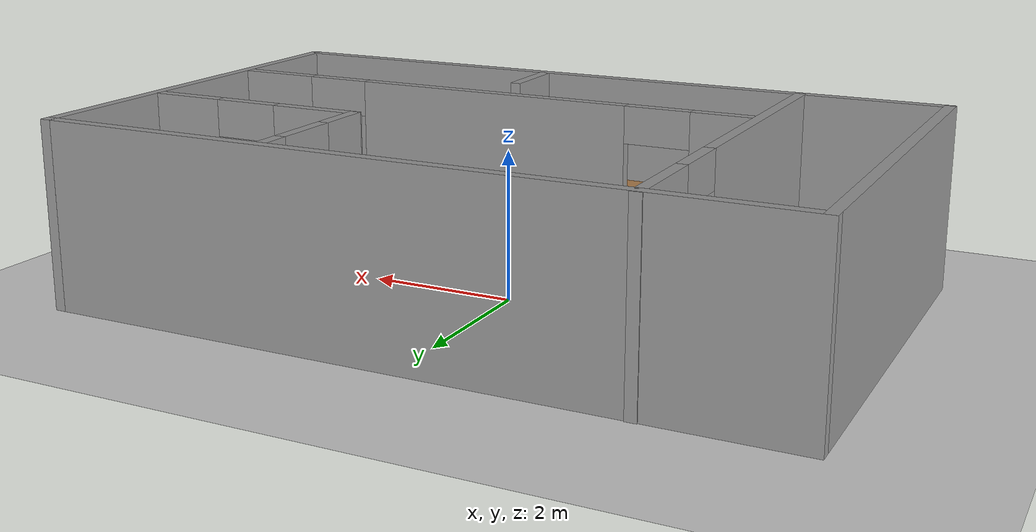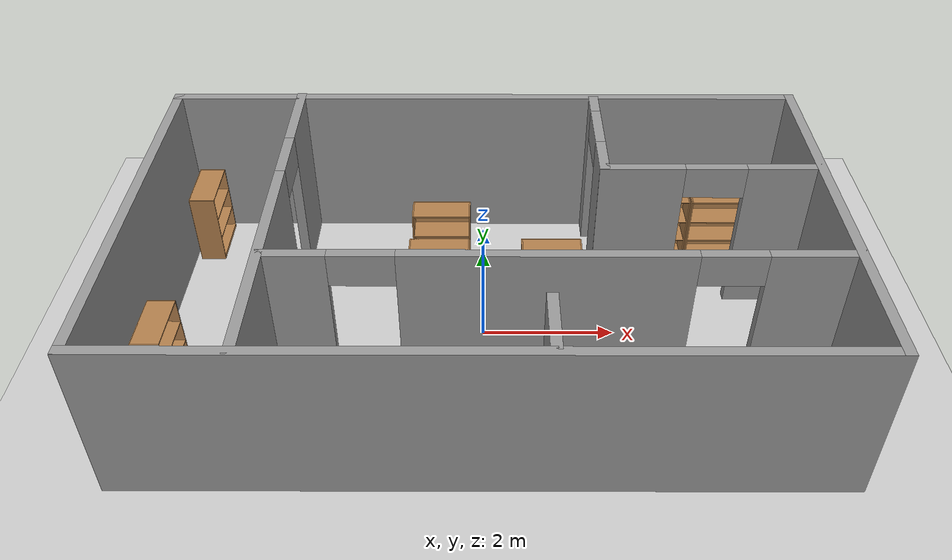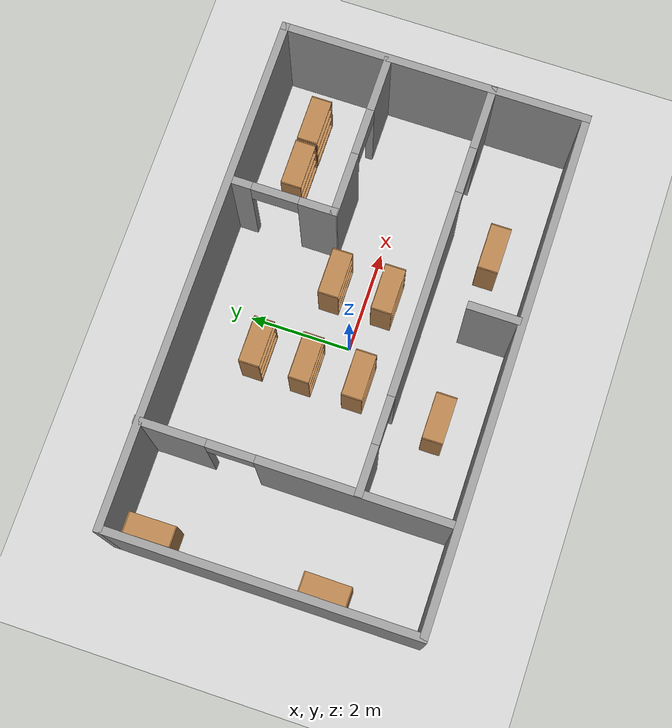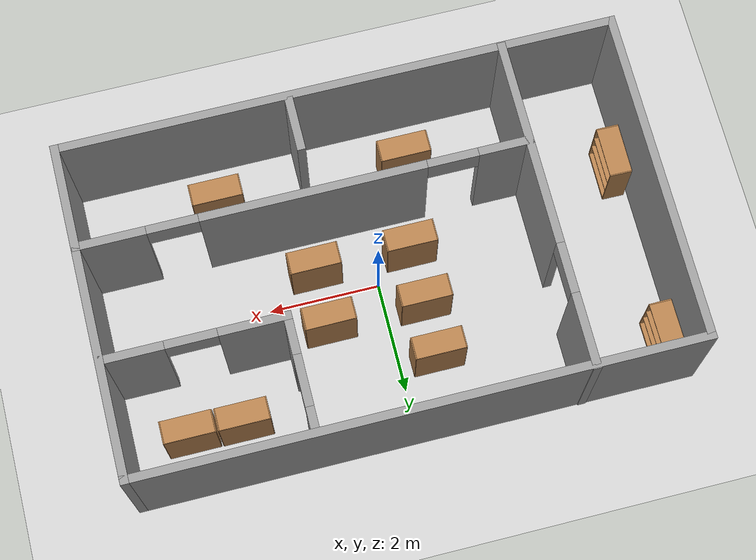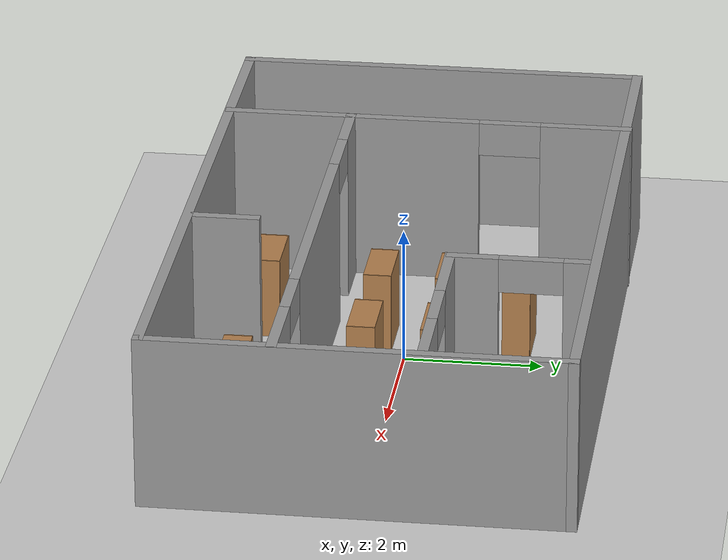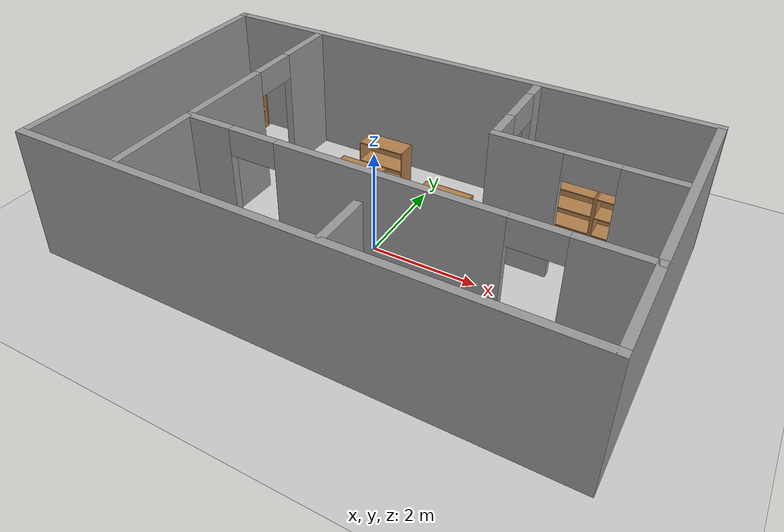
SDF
<sdf version="1.6">
 <world name="default">
  <light name="sun" type="directional">
   <pose>0 0 10 0 -0 0</pose>
   <diffuse>0.8 0.8 0.8 1</diffuse>
   <specular>0.2 0.2 0.2 1</specular>
   <attenuation>
    <range>1000</range>
    <constant>0.9</constant>
    <linear>0.01</linear>
    <quadratic>0.001</quadratic>
   </attenuation>
   <direction>-0.5 0.1 -0.9</direction>
  </light>
  <model name="ground_plane">
   <static>1</static>
   <link name="link">
    <collision name="collision">
     <geometry><plane><normal>0 0 1</normal><size>100 100</size></plane></geometry>
     <surface><friction><ode><mu>100</mu><mu2>50</mu2></ode></friction></surface>
    </collision>
    <visual name="visual">
     <cast_shadows>0</cast_shadows>
     <geometry><plane><normal>0 0 1</normal><size>100 100</size></plane></geometry>
     <material>
      <script><uri>file://media/materials/scripts/gazebo.material</uri><name>Gazebo/Grey</name></script>
     </material>
    </visual>
   </link>
  </model>
  <gravity>0 0 -9.8</gravity>
  <magnetic_field>6e-06 2.3e-05 -4.2e-05</magnetic_field>
  <atmosphere type="adiabatic"/>
  <physics name="default_physics" default="0" type="ode">
   <max_step_size>0.001</max_step_size>
   <real_time_factor>1</real_time_factor>
   <real_time_update_rate>1000</real_time_update_rate>
  </physics>
  <scene><ambient>0.4 0.4 0.4 1</ambient><background>0.7 0.7 0.7 1</background><shadows>1</shadows></scene>
  <audio><device>default</device></audio>
  <spherical_coordinates>
   <surface_model>EARTH_WGS84</surface_model>
   <latitude_deg>0</latitude_deg>
   <longitude_deg>0</longitude_deg>
   <elevation>0</elevation>
   <heading_deg>0</heading_deg>
  </spherical_coordinates>
  <model name="turtlebot_test2">
   <pose>0.00875 -0.020903 0 0 -0 0</pose>
   <link name="Wall_10">
    <pose>0.987783 -1.13106 0 0 -0 0</pose>
    <visual name="Wall_10_Visual_0">
     <pose>-3.51799 0 1.25 0 -0 0</pose>
     <geometry><box><size>0.964011 0.15 2.5</size></box></geometry>
     <material>
      <script><uri>file://media/materials/scripts/gazebo.material</uri><name>Gazebo/Grey</name></script>
      <ambient>1 1 1 1</ambient>
     </material>
     <meta><layer>0</layer></meta>
    </visual>
    <collision name="Wall_10_Collision_0">
     <geometry><box><size>0.964011 0.15 2.5</size></box></geometry>
     <pose>-3.51799 0 1.25 0 -0 0</pose>
    </collision>
    <visual name="Wall_10_Visual_1">
     <pose>-0.152247 0 1.25 0 -0 0</pose>
     <geometry><box><size>3.96748 0.15 2.5</size></box></geometry>
     <material>
      <script><uri>file://media/materials/scripts/gazebo.material</uri><name>Gazebo/Grey</name></script>
      <ambient>1 1 1 1</ambient>
     </material>
     <meta><layer>0</layer></meta>
    </visual>
    <collision name="Wall_10_Collision_1">
     <geometry><box><size>3.96748 0.15 2.5</size></box></geometry>
     <pose>-0.152247 0 1.25 0 -0 0</pose>
    </collision>
    <visual name="Wall_10_Visual_2">
     <pose>3.36575 0 1.25 0 -0 0</pose>
     <geometry><box><size>1.2685 0.15 2.5</size></box></geometry>
     <material>
      <script><uri>file://media/materials/scripts/gazebo.material</uri><name>Gazebo/Grey</name></script>
      <ambient>1 1 1 1</ambient>
     </material>
     <meta><layer>0</layer></meta>
    </visual>
    <collision name="Wall_10_Collision_2">
     <geometry><box><size>1.2685 0.15 2.5</size></box></geometry>
     <pose>3.36575 0 1.25 0 -0 0</pose>
    </collision>
    <visual name="Wall_10_Visual_3">
     <pose>-2.58599 0 2.25 0 -0 0</pose>
     <geometry><box><size>0.9 0.15 0.5</size></box></geometry>
     <material>
      <script><uri>file://media/materials/scripts/gazebo.material</uri><name>Gazebo/Grey</name></script>
      <ambient>1 1 1 1</ambient>
     </material>
     <meta><layer>0</layer></meta>
    </visual>
    <collision name="Wall_10_Collision_3">
     <geometry><box><size>0.9 0.15 0.5</size></box></geometry>
     <pose>-2.58599 0 2.25 0 -0 0</pose>
    </collision>
    <visual name="Wall_10_Visual_4">
     <pose>2.2815 0 2.25 0 -0 0</pose>
     <geometry><box><size>0.9 0.15 0.5</size></box></geometry>
     <material>
      <script><uri>file://media/materials/scripts/gazebo.material</uri><name>Gazebo/Grey</name></script>
      <ambient>1 1 1 1</ambient>
     </material>
     <meta><layer>0</layer></meta>
    </visual>
    <collision name="Wall_10_Collision_4">
     <geometry><box><size>0.9 0.15 0.5</size></box></geometry>
     <pose>2.2815 0 2.25 0 -0 0</pose>
    </collision>
   </link>
   <link name="Wall_12">
    <collision name="Wall_12_Collision">
     <geometry><box><size>1 0.15 2.5</size></box></geometry>
     <pose>0 0 1.25 0 -0 0</pose>
    </collision>
    <visual name="Wall_12_Visual">
     <pose>0 0 1.25 0 -0 0</pose>
     <geometry><box><size>1 0.15 2.5</size></box></geometry>
     <material>
      <script><uri>file://media/materials/scripts/gazebo.material</uri><name>Gazebo/Grey</name></script>
      <ambient>1 1 1 1</ambient>
     </material>
     <meta><layer>0</layer></meta>
    </visual>
    <pose>0.85565 -2.40051 0 0 -0 -1.5708</pose>
   </link>
   <link name="Wall_14">
    <pose>1.76076 1.87936 0 0 -0 -1.5708</pose>
    <visual name="Wall_14_Visual_0">
     <pose>-0.81713 0 1.25 0 -0 0</pose>
     <geometry><box><size>0.454831 0.15 2.5</size></box></geometry>
     <material>
      <script><uri>file://media/materials/scripts/gazebo.material</uri><name>Gazebo/Grey</name></script>
      <ambient>1 1 1 1</ambient>
     </material>
     <meta><layer>0</layer></meta>
    </visual>
    <collision name="Wall_14_Collision_0">
     <geometry><box><size>0.454831 0.15 2.5</size></box></geometry>
     <pose>-0.81713 0 1.25 0 -0 0</pose>
    </collision>
    <visual name="Wall_14_Visual_1">
     <pose>0.677415 0 1.25 0 -0 0</pose>
     <geometry><box><size>0.73426 0.15 2.5</size></box></geometry>
     <material>
      <script><uri>file://media/materials/scripts/gazebo.material</uri><name>Gazebo/Grey</name></script>
      <ambient>1 1 1 1</ambient>
     </material>
     <meta><layer>0</layer></meta>
    </visual>
    <collision name="Wall_14_Collision_1">
     <geometry><box><size>0.73426 0.15 2.5</size></box></geometry>
     <pose>0.677415 0 1.25 0 -0 0</pose>
    </collision>
    <visual name="Wall_14_Visual_2">
     <pose>-0.139715 0 2.25 0 -0 0</pose>
     <geometry><box><size>0.9 0.15 0.5</size></box></geometry>
     <material>
      <script><uri>file://media/materials/scripts/gazebo.material</uri><name>Gazebo/Grey</name></script>
      <ambient>1 1 1 1</ambient>
     </material>
     <meta><layer>0</layer></meta>
    </visual>
    <collision name="Wall_14_Collision_2">
     <geometry><box><size>0.9 0.15 0.5</size></box></geometry>
     <pose>-0.139715 0 2.25 0 -0 0</pose>
    </collision>
   </link>
   <link name="Wall_15">
    <pose>3.31076 0.889706 0 0 -0 0</pose>
    <visual name="Wall_15_Visual_0">
     <pose>-0.9979 0 1.25 0 -0 0</pose>
     <geometry><box><size>1.2542 0.15 2.5</size></box></geometry>
     <material>
      <script><uri>file://media/materials/scripts/gazebo.material</uri><name>Gazebo/Grey</name></script>
      <ambient>1 1 1 1</ambient>
     </material>
     <meta><layer>0</layer></meta>
    </visual>
    <collision name="Wall_15_Collision_0">
     <geometry><box><size>1.2542 0.15 2.5</size></box></geometry>
     <pose>-0.9979 0 1.25 0 -0 0</pose>
    </collision>
    <visual name="Wall_15_Visual_1">
     <pose>1.0771 0 1.25 0 -0 0</pose>
     <geometry><box><size>1.0958 0.15 2.5</size></box></geometry>
     <material>
      <script><uri>file://media/materials/scripts/gazebo.material</uri><name>Gazebo/Grey</name></script>
      <ambient>1 1 1 1</ambient>
     </material>
     <meta><layer>0</layer></meta>
    </visual>
    <collision name="Wall_15_Collision_1">
     <geometry><box><size>1.0958 0.15 2.5</size></box></geometry>
     <pose>1.0771 0 1.25 0 -0 0</pose>
    </collision>
    <visual name="Wall_15_Visual_2">
     <pose>0.079199 0 2.25 0 -0 0</pose>
     <geometry><box><size>0.9 0.15 0.5</size></box></geometry>
     <material>
      <script><uri>file://media/materials/scripts/gazebo.material</uri><name>Gazebo/Grey</name></script>
      <ambient>1 1 1 1</ambient>
     </material>
     <meta><layer>0</layer></meta>
    </visual>
    <collision name="Wall_15_Collision_2">
     <geometry><box><size>0.9 0.15 0.5</size></box></geometry>
     <pose>0.079199 0 2.25 0 -0 0</pose>
    </collision>
   </link>
   <link name="Wall_2">
    <collision name="Wall_2_Collision">
     <geometry><box><size>6 0.15 2.5</size></box></geometry>
     <pose>0 0 1.25 0 -0 0</pose>
    </collision>
    <visual name="Wall_2_Visual">
     <pose>0 0 1.25 0 -0 0</pose>
     <geometry><box><size>6 0.15 2.5</size></box></geometry>
     <material>
      <script><uri>file://media/materials/scripts/gazebo.material</uri><name>Gazebo/Grey</name></script>
      <ambient>1 1 1 1</ambient>
     </material>
     <meta><layer>0</layer></meta>
    </visual>
    <pose>-4.925 -0.007604 0 0 -0 -1.5708</pose>
   </link>
   <link name="Wall_3">
    <collision name="Wall_3_Collision">
     <geometry><box><size>10 0.15 2.5</size></box></geometry>
     <pose>0 0 1.25 0 -0 0</pose>
    </collision>
    <visual name="Wall_3_Visual">
     <pose>0 0 1.25 0 -0 0</pose>
     <geometry><box><size>10 0.15 2.5</size></box></geometry>
     <material>
      <script><uri>file://media/materials/scripts/gazebo.material</uri><name>Gazebo/Grey</name></script>
      <ambient>1 1 1 1</ambient>
     </material>
     <meta><layer>0</layer></meta>
    </visual>
    <pose>-0 -2.93261 0 0 -0 0</pose>
   </link>
   <link name="Wall_4">
    <collision name="Wall_4_Collision">
     <geometry><box><size>6 0.15 2.5</size></box></geometry>
     <pose>0 0 1.25 0 -0 0</pose>
    </collision>
    <visual name="Wall_4_Visual">
     <pose>0 0 1.25 0 -0 0</pose>
     <geometry><box><size>6 0.15 2.5</size></box></geometry>
     <material>
      <script><uri>file://media/materials/scripts/gazebo.material</uri><name>Gazebo/Grey</name></script>
      <ambient>1 1 1 1</ambient>
     </material>
     <meta><layer>0</layer></meta>
    </visual>
    <pose>4.925 -0.007604 0 0 -0 1.5708</pose>
   </link>
   <link name="Wall_5">
    <collision name="Wall_5_Collision">
     <geometry><box><size>10 0.15 2.5</size></box></geometry>
     <pose>0 0 1.25 0 -0 0</pose>
    </collision>
    <visual name="Wall_5_Visual">
     <pose>0 0 1.25 0 -0 0</pose>
     <geometry><box><size>10 0.15 2.5</size></box></geometry>
     <material>
      <script><uri>file://media/materials/scripts/gazebo.material</uri><name>Gazebo/Grey</name></script>
      <ambient>1 1 1 1</ambient>
     </material>
     <meta><layer>0</layer></meta>
    </visual>
    <pose>-0 2.91739 0 0 -0 3.14159</pose>
   </link>
   <link name="Wall_7">
    <pose>-2.94786 0.007604 0 0 -0 -1.5708</pose>
    <visual name="Wall_7_Visual_0">
     <pose>-2.33105 0 1.25 0 -0 0</pose>
     <geometry><box><size>1.33789 0.15 2.5</size></box></geometry>
     <material>
      <script><uri>file://media/materials/scripts/gazebo.material</uri><name>Gazebo/Grey</name></script>
      <ambient>1 1 1 1</ambient>
     </material>
     <meta><layer>0</layer></meta>
    </visual>
    <collision name="Wall_7_Collision_0">
     <geometry><box><size>1.33789 0.15 2.5</size></box></geometry>
     <pose>-2.33105 0 1.25 0 -0 0</pose>
    </collision>
    <visual name="Wall_7_Visual_1">
     <pose>1.11895 0 1.25 0 -0 0</pose>
     <geometry><box><size>3.76211 0.15 2.5</size></box></geometry>
     <material>
      <script><uri>file://media/materials/scripts/gazebo.material</uri><name>Gazebo/Grey</name></script>
      <ambient>1 1 1 1</ambient>
     </material>
     <meta><layer>0</layer></meta>
    </visual>
    <collision name="Wall_7_Collision_1">
     <geometry><box><size>3.76211 0.15 2.5</size></box></geometry>
     <pose>1.11895 0 1.25 0 -0 0</pose>
    </collision>
    <visual name="Wall_7_Visual_2">
     <pose>-1.21211 0 2.25 0 -0 0</pose>
     <geometry><box><size>0.9 0.15 0.5</size></box></geometry>
     <material>
      <script><uri>file://media/materials/scripts/gazebo.material</uri><name>Gazebo/Grey</name></script>
      <ambient>1 1 1 1</ambient>
     </material>
     <meta><layer>0</layer></meta>
    </visual>
    <collision name="Wall_7_Collision_2">
     <geometry><box><size>0.9 0.15 0.5</size></box></geometry>
     <pose>-1.21211 0 2.25 0 -0 0</pose>
    </collision>
   </link>
   <static>1</static>
  </model>
  <model name="bookshelf">
   <static>1</static>
   <link name="link">
    <inertial><mass>1</mass></inertial>
    <collision name="back">
     <pose>0 0.005 0.6 0 -0 0</pose>
     <geometry><box><size>0.9 0.01 1.2</size></box></geometry>
    </collision>
    <visual name="visual1">
     <pose>0 0.005 0.6 0 -0 0</pose>
     <geometry><box><size>0.9 0.01 1.2</size></box></geometry>
     <material>
      <script><uri>file://media/materials/scripts/gazebo.material</uri><name>Gazebo/Wood</name></script>
     </material>
    </visual>
    <collision name="left_side">
     <pose>0.45 -0.195 0.6 0 -0 0</pose>
     <geometry><box><size>0.02 0.4 1.2</size></box></geometry>
    </collision>
    <visual name="visual2">
     <pose>0.45 -0.195 0.6 0 -0 0</pose>
     <geometry><box><size>0.02 0.4 1.2</size></box></geometry>
     <material>
      <script><uri>file://media/materials/scripts/gazebo.material</uri><name>Gazebo/Wood</name></script>
     </material>
    </visual>
    <collision name="right_side">
     <pose>-0.45 -0.195 0.6 0 -0 0</pose>
     <geometry><box><size>0.02 0.4 1.2</size></box></geometry>
    </collision>
    <visual name="visual3">
     <pose>-0.45 -0.195 0.6 0 -0 0</pose>
     <geometry><box><size>0.02 0.4 1.2</size></box></geometry>
     <material>
      <script><uri>file://media/materials/scripts/gazebo.material</uri><name>Gazebo/Wood</name></script>
     </material>
    </visual>
    <collision name="bottom">
     <pose>0 -0.195 0.03 0 -0 0</pose>
     <geometry><box><size>0.88 0.4 0.06</size></box></geometry>
    </collision>
    <visual name="visual4">
     <pose>0 -0.195 0.03 0 -0 0</pose>
     <geometry><box><size>0.88 0.4 0.06</size></box></geometry>
     <material>
      <script><uri>file://media/materials/scripts/gazebo.material</uri><name>Gazebo/Wood</name></script>
     </material>
    </visual>
    <collision name="top">
     <pose>0 -0.195 1.19 0 -0 0</pose>
     <geometry><box><size>0.88 0.4 0.02</size></box></geometry>
    </collision>
    <visual name="visual5">
     <pose>0 -0.195 1.19 0 -0 0</pose>
     <geometry><box><size>0.88 0.4 0.02</size></box></geometry>
     <material>
      <script><uri>file://media/materials/scripts/gazebo.material</uri><name>Gazebo/Wood</name></script>
     </material>
    </visual>
    <collision name="low_shelf">
     <pose>0 -0.195 0.43 0 -0 0</pose>
     <geometry><box><size>0.88 0.4 0.02</size></box></geometry>
    </collision>
    <visual name="visual6">
     <pose>0 -0.195 0.43 0 -0 0</pose>
     <geometry><box><size>0.88 0.4 0.02</size></box></geometry>
     <material>
      <script><uri>file://media/materials/scripts/gazebo.material</uri><name>Gazebo/Wood</name></script>
     </material>
    </visual>
    <collision name="high_shelf">
     <pose>0 -0.195 0.8 0 -0 0</pose>
     <geometry><box><size>0.88 0.4 0.02</size></box></geometry>
    </collision>
    <visual name="visual7">
     <pose>0 -0.195 0.8 0 -0 0</pose>
     <geometry><box><size>0.88 0.4 0.02</size></box></geometry>
     <material>
      <script><uri>file://media/materials/scripts/gazebo.material</uri><name>Gazebo/Wood</name></script>
     </material>
    </visual>
   </link>
   <pose>-0.97921 -1.87273 0 0 -0 0</pose>
  </model>
  <model name="bookshelf_0">
   <static>1</static>
   <link name="link">
    <inertial><mass>1</mass></inertial>
    <collision name="back">
     <pose>0 0.005 0.6 0 -0 0</pose>
     <geometry><box><size>0.9 0.01 1.2</size></box></geometry>
    </collision>
    <visual name="visual1">
     <pose>0 0.005 0.6 0 -0 0</pose>
     <geometry><box><size>0.9 0.01 1.2</size></box></geometry>
     <material>
      <script><uri>file://media/materials/scripts/gazebo.material</uri><name>Gazebo/Wood</name></script>
     </material>
    </visual>
    <collision name="left_side">
     <pose>0.45 -0.195 0.6 0 -0 0</pose>
     <geometry><box><size>0.02 0.4 1.2</size></box></geometry>
    </collision>
    <visual name="visual2">
     <pose>0.45 -0.195 0.6 0 -0 0</pose>
     <geometry><box><size>0.02 0.4 1.2</size></box></geometry>
     <material>
      <script><uri>file://media/materials/scripts/gazebo.material</uri><name>Gazebo/Wood</name></script>
     </material>
    </visual>
    <collision name="right_side">
     <pose>-0.45 -0.195 0.6 0 -0 0</pose>
     <geometry><box><size>0.02 0.4 1.2</size></box></geometry>
    </collision>
    <visual name="visual3">
     <pose>-0.45 -0.195 0.6 0 -0 0</pose>
     <geometry><box><size>0.02 0.4 1.2</size></box></geometry>
     <material>
      <script><uri>file://media/materials/scripts/gazebo.material</uri><name>Gazebo/Wood</name></script>
     </material>
    </visual>
    <collision name="bottom">
     <pose>0 -0.195 0.03 0 -0 0</pose>
     <geometry><box><size>0.88 0.4 0.06</size></box></geometry>
    </collision>
    <visual name="visual4">
     <pose>0 -0.195 0.03 0 -0 0</pose>
     <geometry><box><size>0.88 0.4 0.06</size></box></geometry>
     <material>
      <script><uri>file://media/materials/scripts/gazebo.material</uri><name>Gazebo/Wood</name></script>
     </material>
    </visual>
    <collision name="top">
     <pose>0 -0.195 1.19 0 -0 0</pose>
     <geometry><box><size>0.88 0.4 0.02</size></box></geometry>
    </collision>
    <visual name="visual5">
     <pose>0 -0.195 1.19 0 -0 0</pose>
     <geometry><box><size>0.88 0.4 0.02</size></box></geometry>
     <material>
      <script><uri>file://media/materials/scripts/gazebo.material</uri><name>Gazebo/Wood</name></script>
     </material>
    </visual>
    <collision name="low_shelf">
     <pose>0 -0.195 0.43 0 -0 0</pose>
     <geometry><box><size>0.88 0.4 0.02</size></box></geometry>
    </collision>
    <visual name="visual6">
     <pose>0 -0.195 0.43 0 -0 0</pose>
     <geometry><box><size>0.88 0.4 0.02</size></box></geometry>
     <material>
      <script><uri>file://media/materials/scripts/gazebo.material</uri><name>Gazebo/Wood</name></script>
     </material>
    </visual>
    <collision name="high_shelf">
     <pose>0 -0.195 0.8 0 -0 0</pose>
     <geometry><box><size>0.88 0.4 0.02</size></box></geometry>
    </collision>
    <visual name="visual7">
     <pose>0 -0.195 0.8 0 -0 0</pose>
     <geometry><box><size>0.88 0.4 0.02</size></box></geometry>
     <material>
      <script><uri>file://media/materials/scripts/gazebo.material</uri><name>Gazebo/Wood</name></script>
     </material>
    </visual>
   </link>
   <pose>-0.668812 0.815376 0 0 -0 0</pose>
  </model>
  <model name="bookshelf_1">
   <static>1</static>
   <link name="link">
    <inertial><mass>1</mass></inertial>
    <collision name="back">
     <pose>0 0.005 0.6 0 -0 0</pose>
     <geometry><box><size>0.9 0.01 1.2</size></box></geometry>
    </collision>
    <visual name="visual1">
     <pose>0 0.005 0.6 0 -0 0</pose>
     <geometry><box><size>0.9 0.01 1.2</size></box></geometry>
     <material>
      <script><uri>file://media/materials/scripts/gazebo.material</uri><name>Gazebo/Wood</name></script>
     </material>
    </visual>
    <collision name="left_side">
     <pose>0.45 -0.195 0.6 0 -0 0</pose>
     <geometry><box><size>0.02 0.4 1.2</size></box></geometry>
    </collision>
    <visual name="visual2">
     <pose>0.45 -0.195 0.6 0 -0 0</pose>
     <geometry><box><size>0.02 0.4 1.2</size></box></geometry>
     <material>
      <script><uri>file://media/materials/scripts/gazebo.material</uri><name>Gazebo/Wood</name></script>
     </material>
    </visual>
    <collision name="right_side">
     <pose>-0.45 -0.195 0.6 0 -0 0</pose>
     <geometry><box><size>0.02 0.4 1.2</size></box></geometry>
    </collision>
    <visual name="visual3">
     <pose>-0.45 -0.195 0.6 0 -0 0</pose>
     <geometry><box><size>0.02 0.4 1.2</size></box></geometry>
     <material>
      <script><uri>file://media/materials/scripts/gazebo.material</uri><name>Gazebo/Wood</name></script>
     </material>
    </visual>
    <collision name="bottom">
     <pose>0 -0.195 0.03 0 -0 0</pose>
     <geometry><box><size>0.88 0.4 0.06</size></box></geometry>
    </collision>
    <visual name="visual4">
     <pose>0 -0.195 0.03 0 -0 0</pose>
     <geometry><box><size>0.88 0.4 0.06</size></box></geometry>
     <material>
      <script><uri>file://media/materials/scripts/gazebo.material</uri><name>Gazebo/Wood</name></script>
     </material>
    </visual>
    <collision name="top">
     <pose>0 -0.195 1.19 0 -0 0</pose>
     <geometry><box><size>0.88 0.4 0.02</size></box></geometry>
    </collision>
    <visual name="visual5">
     <pose>0 -0.195 1.19 0 -0 0</pose>
     <geometry><box><size>0.88 0.4 0.02</size></box></geometry>
     <material>
      <script><uri>file://media/materials/scripts/gazebo.material</uri><name>Gazebo/Wood</name></script>
     </material>
    </visual>
    <collision name="low_shelf">
     <pose>0 -0.195 0.43 0 -0 0</pose>
     <geometry><box><size>0.88 0.4 0.02</size></box></geometry>
    </collision>
    <visual name="visual6">
     <pose>0 -0.195 0.43 0 -0 0</pose>
     <geometry><box><size>0.88 0.4 0.02</size></box></geometry>
     <material>
      <script><uri>file://media/materials/scripts/gazebo.material</uri><name>Gazebo/Wood</name></script>
     </material>
    </visual>
    <collision name="high_shelf">
     <pose>0 -0.195 0.8 0 -0 0</pose>
     <geometry><box><size>0.88 0.4 0.02</size></box></geometry>
    </collision>
    <visual name="visual7">
     <pose>0 -0.195 0.8 0 -0 0</pose>
     <geometry><box><size>0.88 0.4 0.02</size></box></geometry>
     <material>
      <script><uri>file://media/materials/scripts/gazebo.material</uri><name>Gazebo/Wood</name></script>
     </material>
    </visual>
   </link>
   <pose>2.88216 2.17684 0 0 -0 0</pose>
  </model>
  <model name="bookshelf_2">
   <static>1</static>
   <link name="link">
    <inertial><mass>1</mass></inertial>
    <collision name="back">
     <pose>0 0.005 0.6 0 -0 0</pose>
     <geometry><box><size>0.9 0.01 1.2</size></box></geometry>
    </collision>
    <visual name="visual1">
     <pose>0 0.005 0.6 0 -0 0</pose>
     <geometry><box><size>0.9 0.01 1.2</size></box></geometry>
     <material>
      <script><uri>file://media/materials/scripts/gazebo.material</uri><name>Gazebo/Wood</name></script>
     </material>
    </visual>
    <collision name="left_side">
     <pose>0.45 -0.195 0.6 0 -0 0</pose>
     <geometry><box><size>0.02 0.4 1.2</size></box></geometry>
    </collision>
    <visual name="visual2">
     <pose>0.45 -0.195 0.6 0 -0 0</pose>
     <geometry><box><size>0.02 0.4 1.2</size></box></geometry>
     <material>
      <script><uri>file://media/materials/scripts/gazebo.material</uri><name>Gazebo/Wood</name></script>
     </material>
    </visual>
    <collision name="right_side">
     <pose>-0.45 -0.195 0.6 0 -0 0</pose>
     <geometry><box><size>0.02 0.4 1.2</size></box></geometry>
    </collision>
    <visual name="visual3">
     <pose>-0.45 -0.195 0.6 0 -0 0</pose>
     <geometry><box><size>0.02 0.4 1.2</size></box></geometry>
     <material>
      <script><uri>file://media/materials/scripts/gazebo.material</uri><name>Gazebo/Wood</name></script>
     </material>
    </visual>
    <collision name="bottom">
     <pose>0 -0.195 0.03 0 -0 0</pose>
     <geometry><box><size>0.88 0.4 0.06</size></box></geometry>
    </collision>
    <visual name="visual4">
     <pose>0 -0.195 0.03 0 -0 0</pose>
     <geometry><box><size>0.88 0.4 0.06</size></box></geometry>
     <material>
      <script><uri>file://media/materials/scripts/gazebo.material</uri><name>Gazebo/Wood</name></script>
     </material>
    </visual>
    <collision name="top">
     <pose>0 -0.195 1.19 0 -0 0</pose>
     <geometry><box><size>0.88 0.4 0.02</size></box></geometry>
    </collision>
    <visual name="visual5">
     <pose>0 -0.195 1.19 0 -0 0</pose>
     <geometry><box><size>0.88 0.4 0.02</size></box></geometry>
     <material>
      <script><uri>file://media/materials/scripts/gazebo.material</uri><name>Gazebo/Wood</name></script>
     </material>
    </visual>
    <collision name="low_shelf">
     <pose>0 -0.195 0.43 0 -0 0</pose>
     <geometry><box><size>0.88 0.4 0.02</size></box></geometry>
    </collision>
    <visual name="visual6">
     <pose>0 -0.195 0.43 0 -0 0</pose>
     <geometry><box><size>0.88 0.4 0.02</size></box></geometry>
     <material>
      <script><uri>file://media/materials/scripts/gazebo.material</uri><name>Gazebo/Wood</name></script>
     </material>
    </visual>
    <collision name="high_shelf">
     <pose>0 -0.195 0.8 0 -0 0</pose>
     <geometry><box><size>0.88 0.4 0.02</size></box></geometry>
    </collision>
    <visual name="visual7">
     <pose>0 -0.195 0.8 0 -0 0</pose>
     <geometry><box><size>0.88 0.4 0.02</size></box></geometry>
     <material>
      <script><uri>file://media/materials/scripts/gazebo.material</uri><name>Gazebo/Wood</name></script>
     </material>
    </visual>
   </link>
   <pose>3.83095 2.17166 0 0 -0 0</pose>
  </model>
  <model name="bookshelf_3">
   <static>1</static>
   <link name="link">
    <inertial><mass>1</mass></inertial>
    <collision name="back">
     <pose>0 0.005 0.6 0 -0 0</pose>
     <geometry><box><size>0.9 0.01 1.2</size></box></geometry>
    </collision>
    <visual name="visual1">
     <pose>0 0.005 0.6 0 -0 0</pose>
     <geometry><box><size>0.9 0.01 1.2</size></box></geometry>
     <material>
      <script><uri>file://media/materials/scripts/gazebo.material</uri><name>Gazebo/Wood</name></script>
     </material>
    </visual>
    <collision name="left_side">
     <pose>0.45 -0.195 0.6 0 -0 0</pose>
     <geometry><box><size>0.02 0.4 1.2</size></box></geometry>
    </collision>
    <visual name="visual2">
     <pose>0.45 -0.195 0.6 0 -0 0</pose>
     <geometry><box><size>0.02 0.4 1.2</size></box></geometry>
     <material>
      <script><uri>file://media/materials/scripts/gazebo.material</uri><name>Gazebo/Wood</name></script>
     </material>
    </visual>
    <collision name="right_side">
     <pose>-0.45 -0.195 0.6 0 -0 0</pose>
     <geometry><box><size>0.02 0.4 1.2</size></box></geometry>
    </collision>
    <visual name="visual3">
     <pose>-0.45 -0.195 0.6 0 -0 0</pose>
     <geometry><box><size>0.02 0.4 1.2</size></box></geometry>
     <material>
      <script><uri>file://media/materials/scripts/gazebo.material</uri><name>Gazebo/Wood</name></script>
     </material>
    </visual>
    <collision name="bottom">
     <pose>0 -0.195 0.03 0 -0 0</pose>
     <geometry><box><size>0.88 0.4 0.06</size></box></geometry>
    </collision>
    <visual name="visual4">
     <pose>0 -0.195 0.03 0 -0 0</pose>
     <geometry><box><size>0.88 0.4 0.06</size></box></geometry>
     <material>
      <script><uri>file://media/materials/scripts/gazebo.material</uri><name>Gazebo/Wood</name></script>
     </material>
    </visual>
    <collision name="top">
     <pose>0 -0.195 1.19 0 -0 0</pose>
     <geometry><box><size>0.88 0.4 0.02</size></box></geometry>
    </collision>
    <visual name="visual5">
     <pose>0 -0.195 1.19 0 -0 0</pose>
     <geometry><box><size>0.88 0.4 0.02</size></box></geometry>
     <material>
      <script><uri>file://media/materials/scripts/gazebo.material</uri><name>Gazebo/Wood</name></script>
     </material>
    </visual>
    <collision name="low_shelf">
     <pose>0 -0.195 0.43 0 -0 0</pose>
     <geometry><box><size>0.88 0.4 0.02</size></box></geometry>
    </collision>
    <visual name="visual6">
     <pose>0 -0.195 0.43 0 -0 0</pose>
     <geometry><box><size>0.88 0.4 0.02</size></box></geometry>
     <material>
      <script><uri>file://media/materials/scripts/gazebo.material</uri><name>Gazebo/Wood</name></script>
     </material>
    </visual>
    <collision name="high_shelf">
     <pose>0 -0.195 0.8 0 -0 0</pose>
     <geometry><box><size>0.88 0.4 0.02</size></box></geometry>
    </collision>
    <visual name="visual7">
     <pose>0 -0.195 0.8 0 -0 0</pose>
     <geometry><box><size>0.88 0.4 0.02</size></box></geometry>
     <material>
      <script><uri>file://media/materials/scripts/gazebo.material</uri><name>Gazebo/Wood</name></script>
     </material>
    </visual>
   </link>
   <pose>2.44883 -1.87572 0 0 -0 0</pose>
  </model>
  <model name="bookshelf_4">
   <static>1</static>
   <link name="link">
    <inertial><mass>1</mass></inertial>
    <collision name="back">
     <pose>0 0.005 0.6 0 -0 0</pose>
     <geometry><box><size>0.9 0.01 1.2</size></box></geometry>
    </collision>
    <visual name="visual1">
     <pose>0 0.005 0.6 0 -0 0</pose>
     <geometry><box><size>0.9 0.01 1.2</size></box></geometry>
     <material>
      <script><uri>file://media/materials/scripts/gazebo.material</uri><name>Gazebo/Wood</name></script>
     </material>
    </visual>
    <collision name="left_side">
     <pose>0.45 -0.195 0.6 0 -0 0</pose>
     <geometry><box><size>0.02 0.4 1.2</size></box></geometry>
    </collision>
    <visual name="visual2">
     <pose>0.45 -0.195 0.6 0 -0 0</pose>
     <geometry><box><size>0.02 0.4 1.2</size></box></geometry>
     <material>
      <script><uri>file://media/materials/scripts/gazebo.material</uri><name>Gazebo/Wood</name></script>
     </material>
    </visual>
    <collision name="right_side">
     <pose>-0.45 -0.195 0.6 0 -0 0</pose>
     <geometry><box><size>0.02 0.4 1.2</size></box></geometry>
    </collision>
    <visual name="visual3">
     <pose>-0.45 -0.195 0.6 0 -0 0</pose>
     <geometry><box><size>0.02 0.4 1.2</size></box></geometry>
     <material>
      <script><uri>file://media/materials/scripts/gazebo.material</uri><name>Gazebo/Wood</name></script>
     </material>
    </visual>
    <collision name="bottom">
     <pose>0 -0.195 0.03 0 -0 0</pose>
     <geometry><box><size>0.88 0.4 0.06</size></box></geometry>
    </collision>
    <visual name="visual4">
     <pose>0 -0.195 0.03 0 -0 0</pose>
     <geometry><box><size>0.88 0.4 0.06</size></box></geometry>
     <material>
      <script><uri>file://media/materials/scripts/gazebo.material</uri><name>Gazebo/Wood</name></script>
     </material>
    </visual>
    <collision name="top">
     <pose>0 -0.195 1.19 0 -0 0</pose>
     <geometry><box><size>0.88 0.4 0.02</size></box></geometry>
    </collision>
    <visual name="visual5">
     <pose>0 -0.195 1.19 0 -0 0</pose>
     <geometry><box><size>0.88 0.4 0.02</size></box></geometry>
     <material>
      <script><uri>file://media/materials/scripts/gazebo.material</uri><name>Gazebo/Wood</name></script>
     </material>
    </visual>
    <collision name="low_shelf">
     <pose>0 -0.195 0.43 0 -0 0</pose>
     <geometry><box><size>0.88 0.4 0.02</size></box></geometry>
    </collision>
    <visual name="visual6">
     <pose>0 -0.195 0.43 0 -0 0</pose>
     <geometry><box><size>0.88 0.4 0.02</size></box></geometry>
     <material>
      <script><uri>file://media/materials/scripts/gazebo.material</uri><name>Gazebo/Wood</name></script>
     </material>
    </visual>
    <collision name="high_shelf">
     <pose>0 -0.195 0.8 0 -0 0</pose>
     <geometry><box><size>0.88 0.4 0.02</size></box></geometry>
    </collision>
    <visual name="visual7">
     <pose>0 -0.195 0.8 0 -0 0</pose>
     <geometry><box><size>0.88 0.4 0.02</size></box></geometry>
     <material>
      <script><uri>file://media/materials/scripts/gazebo.material</uri><name>Gazebo/Wood</name></script>
     </material>
    </visual>
   </link>
   <pose>-0.665903 1.78517 0 0 -0 0</pose>
  </model>
  <model name="bookshelf_5">
   <static>1</static>
   <link name="link">
    <inertial><mass>1</mass></inertial>
    <collision name="back">
     <pose>0 0.005 0.6 0 -0 0</pose>
     <geometry><box><size>0.9 0.01 1.2</size></box></geometry>
    </collision>
    <visual name="visual1">
     <pose>0 0.005 0.6 0 -0 0</pose>
     <geometry><box><size>0.9 0.01 1.2</size></box></geometry>
     <material>
      <script><uri>file://media/materials/scripts/gazebo.material</uri><name>Gazebo/Wood</name></script>
     </material>
    </visual>
    <collision name="left_side">
     <pose>0.45 -0.195 0.6 0 -0 0</pose>
     <geometry><box><size>0.02 0.4 1.2</size></box></geometry>
    </collision>
    <visual name="visual2">
     <pose>0.45 -0.195 0.6 0 -0 0</pose>
     <geometry><box><size>0.02 0.4 1.2</size></box></geometry>
     <material>
      <script><uri>file://media/materials/scripts/gazebo.material</uri><name>Gazebo/Wood</name></script>
     </material>
    </visual>
    <collision name="right_side">
     <pose>-0.45 -0.195 0.6 0 -0 0</pose>
     <geometry><box><size>0.02 0.4 1.2</size></box></geometry>
    </collision>
    <visual name="visual3">
     <pose>-0.45 -0.195 0.6 0 -0 0</pose>
     <geometry><box><size>0.02 0.4 1.2</size></box></geometry>
     <material>
      <script><uri>file://media/materials/scripts/gazebo.material</uri><name>Gazebo/Wood</name></script>
     </material>
    </visual>
    <collision name="bottom">
     <pose>0 -0.195 0.03 0 -0 0</pose>
     <geometry><box><size>0.88 0.4 0.06</size></box></geometry>
    </collision>
    <visual name="visual4">
     <pose>0 -0.195 0.03 0 -0 0</pose>
     <geometry><box><size>0.88 0.4 0.06</size></box></geometry>
     <material>
      <script><uri>file://media/materials/scripts/gazebo.material</uri><name>Gazebo/Wood</name></script>
     </material>
    </visual>
    <collision name="top">
     <pose>0 -0.195 1.19 0 -0 0</pose>
     <geometry><box><size>0.88 0.4 0.02</size></box></geometry>
    </collision>
    <visual name="visual5">
     <pose>0 -0.195 1.19 0 -0 0</pose>
     <geometry><box><size>0.88 0.4 0.02</size></box></geometry>
     <material>
      <script><uri>file://media/materials/scripts/gazebo.material</uri><name>Gazebo/Wood</name></script>
     </material>
    </visual>
    <collision name="low_shelf">
     <pose>0 -0.195 0.43 0 -0 0</pose>
     <geometry><box><size>0.88 0.4 0.02</size></box></geometry>
    </collision>
    <visual name="visual6">
     <pose>0 -0.195 0.43 0 -0 0</pose>
     <geometry><box><size>0.88 0.4 0.02</size></box></geometry>
     <material>
      <script><uri>file://media/materials/scripts/gazebo.material</uri><name>Gazebo/Wood</name></script>
     </material>
    </visual>
    <collision name="high_shelf">
     <pose>0 -0.195 0.8 0 -0 0</pose>
     <geometry><box><size>0.88 0.4 0.02</size></box></geometry>
    </collision>
    <visual name="visual7">
     <pose>0 -0.195 0.8 0 -0 0</pose>
     <geometry><box><size>0.88 0.4 0.02</size></box></geometry>
     <material>
      <script><uri>file://media/materials/scripts/gazebo.material</uri><name>Gazebo/Wood</name></script>
     </material>
    </visual>
   </link>
   <pose>-0.673198 -0.216987 0 0 -0 0</pose>
  </model>
  <model name="bookshelf_6">
   <static>1</static>
   <link name="link">
    <inertial><mass>1</mass></inertial>
    <collision name="back">
     <pose>0 0.005 0.6 0 -0 0</pose>
     <geometry><box><size>0.9 0.01 1.2</size></box></geometry>
    </collision>
    <visual name="visual1">
     <pose>0 0.005 0.6 0 -0 0</pose>
     <geometry><box><size>0.9 0.01 1.2</size></box></geometry>
     <material>
      <script><uri>file://media/materials/scripts/gazebo.material</uri><name>Gazebo/Wood</name></script>
     </material>
    </visual>
    <collision name="left_side">
     <pose>0.45 -0.195 0.6 0 -0 0</pose>
     <geometry><box><size>0.02 0.4 1.2</size></box></geometry>
    </collision>
    <visual name="visual2">
     <pose>0.45 -0.195 0.6 0 -0 0</pose>
     <geometry><box><size>0.02 0.4 1.2</size></box></geometry>
     <material>
      <script><uri>file://media/materials/scripts/gazebo.material</uri><name>Gazebo/Wood</name></script>
     </material>
    </visual>
    <collision name="right_side">
     <pose>-0.45 -0.195 0.6 0 -0 0</pose>
     <geometry><box><size>0.02 0.4 1.2</size></box></geometry>
    </collision>
    <visual name="visual3">
     <pose>-0.45 -0.195 0.6 0 -0 0</pose>
     <geometry><box><size>0.02 0.4 1.2</size></box></geometry>
     <material>
      <script><uri>file://media/materials/scripts/gazebo.material</uri><name>Gazebo/Wood</name></script>
     </material>
    </visual>
    <collision name="bottom">
     <pose>0 -0.195 0.03 0 -0 0</pose>
     <geometry><box><size>0.88 0.4 0.06</size></box></geometry>
    </collision>
    <visual name="visual4">
     <pose>0 -0.195 0.03 0 -0 0</pose>
     <geometry><box><size>0.88 0.4 0.06</size></box></geometry>
     <material>
      <script><uri>file://media/materials/scripts/gazebo.material</uri><name>Gazebo/Wood</name></script>
     </material>
    </visual>
    <collision name="top">
     <pose>0 -0.195 1.19 0 -0 0</pose>
     <geometry><box><size>0.88 0.4 0.02</size></box></geometry>
    </collision>
    <visual name="visual5">
     <pose>0 -0.195 1.19 0 -0 0</pose>
     <geometry><box><size>0.88 0.4 0.02</size></box></geometry>
     <material>
      <script><uri>file://media/materials/scripts/gazebo.material</uri><name>Gazebo/Wood</name></script>
     </material>
    </visual>
    <collision name="low_shelf">
     <pose>0 -0.195 0.43 0 -0 0</pose>
     <geometry><box><size>0.88 0.4 0.02</size></box></geometry>
    </collision>
    <visual name="visual6">
     <pose>0 -0.195 0.43 0 -0 0</pose>
     <geometry><box><size>0.88 0.4 0.02</size></box></geometry>
     <material>
      <script><uri>file://media/materials/scripts/gazebo.material</uri><name>Gazebo/Wood</name></script>
     </material>
    </visual>
    <collision name="high_shelf">
     <pose>0 -0.195 0.8 0 -0 0</pose>
     <geometry><box><size>0.88 0.4 0.02</size></box></geometry>
    </collision>
    <visual name="visual7">
     <pose>0 -0.195 0.8 0 -0 0</pose>
     <geometry><box><size>0.88 0.4 0.02</size></box></geometry>
     <material>
      <script><uri>file://media/materials/scripts/gazebo.material</uri><name>Gazebo/Wood</name></script>
     </material>
    </visual>
   </link>
   <pose>1.04711 0.816149 0 0 -0 0</pose>
  </model>
  <model name="bookshelf_7">
   <static>1</static>
   <link name="link">
    <inertial><mass>1</mass></inertial>
    <collision name="back">
     <pose>0 0.005 0.6 0 -0 0</pose>
     <geometry><box><size>0.9 0.01 1.2</size></box></geometry>
    </collision>
    <visual name="visual1">
     <pose>0 0.005 0.6 0 -0 0</pose>
     <geometry><box><size>0.9 0.01 1.2</size></box></geometry>
     <material>
      <script><uri>file://media/materials/scripts/gazebo.material</uri><name>Gazebo/Wood</name></script>
     </material>
    </visual>
    <collision name="left_side">
     <pose>0.45 -0.195 0.6 0 -0 0</pose>
     <geometry><box><size>0.02 0.4 1.2</size></box></geometry>
    </collision>
    <visual name="visual2">
     <pose>0.45 -0.195 0.6 0 -0 0</pose>
     <geometry><box><size>0.02 0.4 1.2</size></box></geometry>
     <material>
      <script><uri>file://media/materials/scripts/gazebo.material</uri><name>Gazebo/Wood</name></script>
     </material>
    </visual>
    <collision name="right_side">
     <pose>-0.45 -0.195 0.6 0 -0 0</pose>
     <geometry><box><size>0.02 0.4 1.2</size></box></geometry>
    </collision>
    <visual name="visual3">
     <pose>-0.45 -0.195 0.6 0 -0 0</pose>
     <geometry><box><size>0.02 0.4 1.2</size></box></geometry>
     <material>
      <script><uri>file://media/materials/scripts/gazebo.material</uri><name>Gazebo/Wood</name></script>
     </material>
    </visual>
    <collision name="bottom">
     <pose>0 -0.195 0.03 0 -0 0</pose>
     <geometry><box><size>0.88 0.4 0.06</size></box></geometry>
    </collision>
    <visual name="visual4">
     <pose>0 -0.195 0.03 0 -0 0</pose>
     <geometry><box><size>0.88 0.4 0.06</size></box></geometry>
     <material>
      <script><uri>file://media/materials/scripts/gazebo.material</uri><name>Gazebo/Wood</name></script>
     </material>
    </visual>
    <collision name="top">
     <pose>0 -0.195 1.19 0 -0 0</pose>
     <geometry><box><size>0.88 0.4 0.02</size></box></geometry>
    </collision>
    <visual name="visual5">
     <pose>0 -0.195 1.19 0 -0 0</pose>
     <geometry><box><size>0.88 0.4 0.02</size></box></geometry>
     <material>
      <script><uri>file://media/materials/scripts/gazebo.material</uri><name>Gazebo/Wood</name></script>
     </material>
    </visual>
    <collision name="low_shelf">
     <pose>0 -0.195 0.43 0 -0 0</pose>
     <geometry><box><size>0.88 0.4 0.02</size></box></geometry>
    </collision>
    <visual name="visual6">
     <pose>0 -0.195 0.43 0 -0 0</pose>
     <geometry><box><size>0.88 0.4 0.02</size></box></geometry>
     <material>
      <script><uri>file://media/materials/scripts/gazebo.material</uri><name>Gazebo/Wood</name></script>
     </material>
    </visual>
    <collision name="high_shelf">
     <pose>0 -0.195 0.8 0 -0 0</pose>
     <geometry><box><size>0.88 0.4 0.02</size></box></geometry>
    </collision>
    <visual name="visual7">
     <pose>0 -0.195 0.8 0 -0 0</pose>
     <geometry><box><size>0.88 0.4 0.02</size></box></geometry>
     <material>
      <script><uri>file://media/materials/scripts/gazebo.material</uri><name>Gazebo/Wood</name></script>
     </material>
    </visual>
   </link>
   <pose>1.06238 -0.223125 0 0 -0 0</pose>
  </model>
  <model name="bookshelf_8">
   <static>1</static>
   <link name="link">
    <inertial><mass>1</mass></inertial>
    <collision name="back">
     <pose>0 0.005 0.6 0 -0 0</pose>
     <geometry><box><size>0.9 0.01 1.2</size></box></geometry>
    </collision>
    <visual name="visual1">
     <pose>0 0.005 0.6 0 -0 0</pose>
     <geometry><box><size>0.9 0.01 1.2</size></box></geometry>
     <material>
      <script><uri>file://media/materials/scripts/gazebo.material</uri><name>Gazebo/Wood</name></script>
     </material>
    </visual>
    <collision name="left_side">
     <pose>0.45 -0.195 0.6 0 -0 0</pose>
     <geometry><box><size>0.02 0.4 1.2</size></box></geometry>
    </collision>
    <visual name="visual2">
     <pose>0.45 -0.195 0.6 0 -0 0</pose>
     <geometry><box><size>0.02 0.4 1.2</size></box></geometry>
     <material>
      <script><uri>file://media/materials/scripts/gazebo.material</uri><name>Gazebo/Wood</name></script>
     </material>
    </visual>
    <collision name="right_side">
     <pose>-0.45 -0.195 0.6 0 -0 0</pose>
     <geometry><box><size>0.02 0.4 1.2</size></box></geometry>
    </collision>
    <visual name="visual3">
     <pose>-0.45 -0.195 0.6 0 -0 0</pose>
     <geometry><box><size>0.02 0.4 1.2</size></box></geometry>
     <material>
      <script><uri>file://media/materials/scripts/gazebo.material</uri><name>Gazebo/Wood</name></script>
     </material>
    </visual>
    <collision name="bottom">
     <pose>0 -0.195 0.03 0 -0 0</pose>
     <geometry><box><size>0.88 0.4 0.06</size></box></geometry>
    </collision>
    <visual name="visual4">
     <pose>0 -0.195 0.03 0 -0 0</pose>
     <geometry><box><size>0.88 0.4 0.06</size></box></geometry>
     <material>
      <script><uri>file://media/materials/scripts/gazebo.material</uri><name>Gazebo/Wood</name></script>
     </material>
    </visual>
    <collision name="top">
     <pose>0 -0.195 1.19 0 -0 0</pose>
     <geometry><box><size>0.88 0.4 0.02</size></box></geometry>
    </collision>
    <visual name="visual5">
     <pose>0 -0.195 1.19 0 -0 0</pose>
     <geometry><box><size>0.88 0.4 0.02</size></box></geometry>
     <material>
      <script><uri>file://media/materials/scripts/gazebo.material</uri><name>Gazebo/Wood</name></script>
     </material>
    </visual>
    <collision name="low_shelf">
     <pose>0 -0.195 0.43 0 -0 0</pose>
     <geometry><box><size>0.88 0.4 0.02</size></box></geometry>
    </collision>
    <visual name="visual6">
     <pose>0 -0.195 0.43 0 -0 0</pose>
     <geometry><box><size>0.88 0.4 0.02</size></box></geometry>
     <material>
      <script><uri>file://media/materials/scripts/gazebo.material</uri><name>Gazebo/Wood</name></script>
     </material>
    </visual>
    <collision name="high_shelf">
     <pose>0 -0.195 0.8 0 -0 0</pose>
     <geometry><box><size>0.88 0.4 0.02</size></box></geometry>
    </collision>
    <visual name="visual7">
     <pose>0 -0.195 0.8 0 -0 0</pose>
     <geometry><box><size>0.88 0.4 0.02</size></box></geometry>
     <material>
      <script><uri>file://media/materials/scripts/gazebo.material</uri><name>Gazebo/Wood</name></script>
     </material>
    </visual>
   </link>
   <pose>-4.77729 -1.06623 0 0 -0 1.56112</pose>
  </model>
  <model name="bookshelf_9">
   <static>1</static>
   <link name="link">
    <inertial><mass>1</mass></inertial>
    <collision name="back">
     <pose>0 0.005 0.6 0 -0 0</pose>
     <geometry><box><size>0.9 0.01 1.2</size></box></geometry>
    </collision>
    <visual name="visual1">
     <pose>0 0.005 0.6 0 -0 0</pose>
     <geometry><box><size>0.9 0.01 1.2</size></box></geometry>
     <material>
      <script><uri>file://media/materials/scripts/gazebo.material</uri><name>Gazebo/Wood</name></script>
     </material>
    </visual>
    <collision name="left_side">
     <pose>0.45 -0.195 0.6 0 -0 0</pose>
     <geometry><box><size>0.02 0.4 1.2</size></box></geometry>
    </collision>
    <visual name="visual2">
     <pose>0.45 -0.195 0.6 0 -0 0</pose>
     <geometry><box><size>0.02 0.4 1.2</size></box></geometry>
     <material>
      <script><uri>file://media/materials/scripts/gazebo.material</uri><name>Gazebo/Wood</name></script>
     </material>
    </visual>
    <collision name="right_side">
     <pose>-0.45 -0.195 0.6 0 -0 0</pose>
     <geometry><box><size>0.02 0.4 1.2</size></box></geometry>
    </collision>
    <visual name="visual3">
     <pose>-0.45 -0.195 0.6 0 -0 0</pose>
     <geometry><box><size>0.02 0.4 1.2</size></box></geometry>
     <material>
      <script><uri>file://media/materials/scripts/gazebo.material</uri><name>Gazebo/Wood</name></script>
     </material>
    </visual>
    <collision name="bottom">
     <pose>0 -0.195 0.03 0 -0 0</pose>
     <geometry><box><size>0.88 0.4 0.06</size></box></geometry>
    </collision>
    <visual name="visual4">
     <pose>0 -0.195 0.03 0 -0 0</pose>
     <geometry><box><size>0.88 0.4 0.06</size></box></geometry>
     <material>
      <script><uri>file://media/materials/scripts/gazebo.material</uri><name>Gazebo/Wood</name></script>
     </material>
    </visual>
    <collision name="top">
     <pose>0 -0.195 1.19 0 -0 0</pose>
     <geometry><box><size>0.88 0.4 0.02</size></box></geometry>
    </collision>
    <visual name="visual5">
     <pose>0 -0.195 1.19 0 -0 0</pose>
     <geometry><box><size>0.88 0.4 0.02</size></box></geometry>
     <material>
      <script><uri>file://media/materials/scripts/gazebo.material</uri><name>Gazebo/Wood</name></script>
     </material>
    </visual>
    <collision name="low_shelf">
     <pose>0 -0.195 0.43 0 -0 0</pose>
     <geometry><box><size>0.88 0.4 0.02</size></box></geometry>
    </collision>
    <visual name="visual6">
     <pose>0 -0.195 0.43 0 -0 0</pose>
     <geometry><box><size>0.88 0.4 0.02</size></box></geometry>
     <material>
      <script><uri>file://media/materials/scripts/gazebo.material</uri><name>Gazebo/Wood</name></script>
     </material>
    </visual>
    <collision name="high_shelf">
     <pose>0 -0.195 0.8 0 -0 0</pose>
     <geometry><box><size>0.88 0.4 0.02</size></box></geometry>
    </collision>
    <visual name="visual7">
     <pose>0 -0.195 0.8 0 -0 0</pose>
     <geometry><box><size>0.88 0.4 0.02</size></box></geometry>
     <material>
      <script><uri>file://media/materials/scripts/gazebo.material</uri><name>Gazebo/Wood</name></script>
     </material>
    </visual>
   </link>
   <pose>-4.7543 2.2719 0 0 -0 1.57862</pose>
  </model>
 </world>
</sdf>
